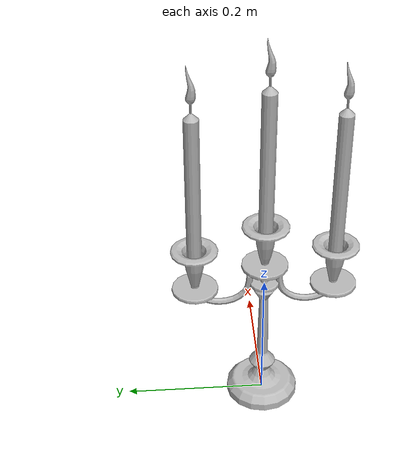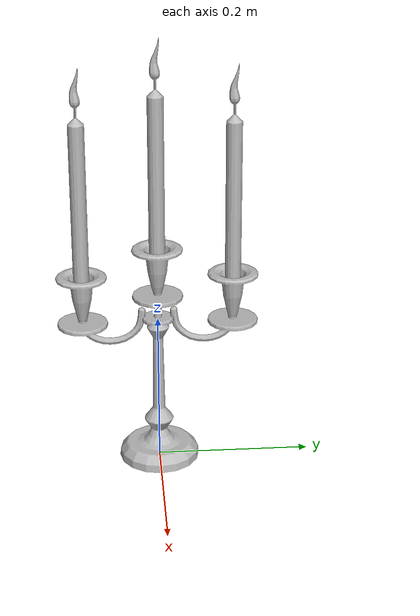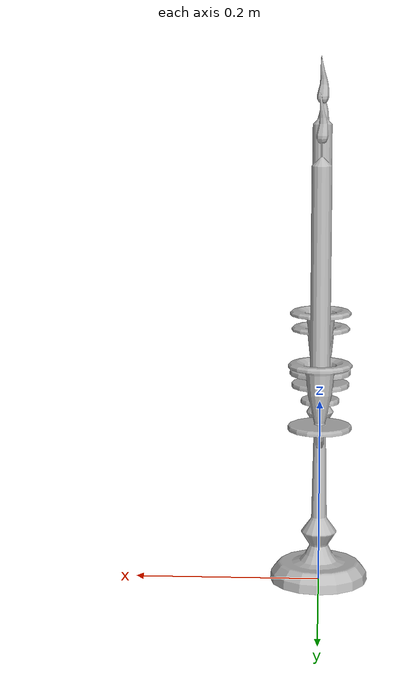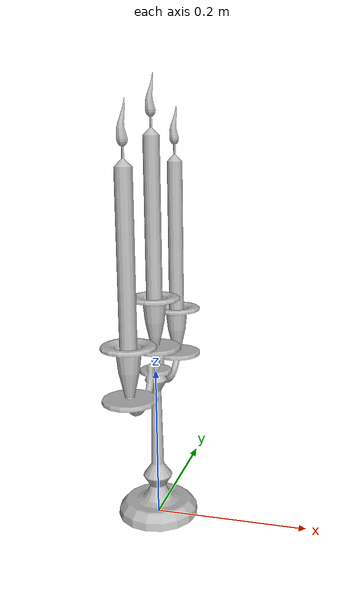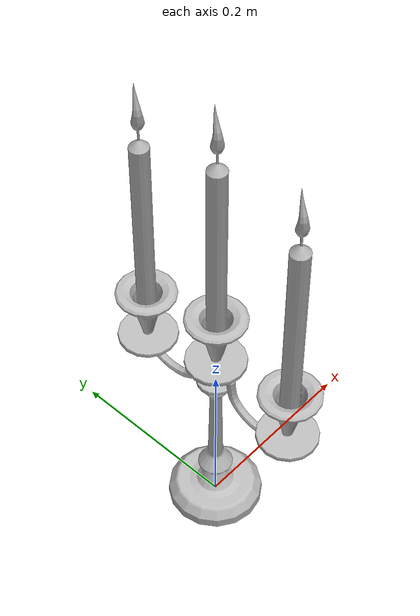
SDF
<?xml version='1.0'?>
<sdf version='1.4'>
  <model name='531'>
    <pose>0 0 0 0 0 0</pose>
    <static>true</static>
    <link name='link'>
      <collision name='collision'>
        <pose>0 0 0 0 0 0</pose>
        <geometry>
          <box>
            <size>0.105612 0.26 2</size>
          </box>
        </geometry>
      </collision>
      <visual name='visual'>
        <pose>0 0 0 0 0 0</pose>
        <geometry>
          <mesh><uri>model://531/531.dae</uri></mesh>
        </geometry>
      </visual>
    </link>
  </model>
</sdf>
